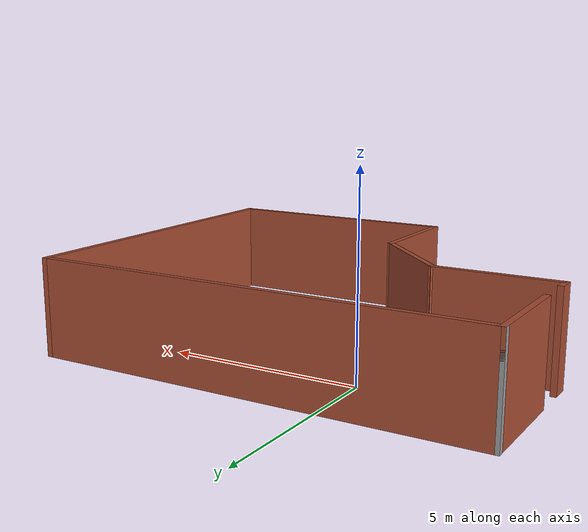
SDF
<?xml version='1.0'?>
<sdf version='1.7'>
  <model name='room-with-slant'>
    <pose>1.79263 -2.57025 0 0 -0 0</pose>
    <link name='Wall_0'>
      <collision name='Wall_0_Collision'>
        <geometry>
          <box>
            <size>0.5 0.15 2.5</size>
          </box>
        </geometry>
        <pose>0 0 1.25 0 -0 0</pose>
      </collision>
      <visual name='Wall_0_Visual'>
        <pose>0 0 1.25 0 -0 0</pose>
        <geometry>
          <box>
            <size>0.5 0.15 2.5</size>
          </box>
        </geometry>
        <material>
          <script>
            <uri>file://media/materials/scripts/gazebo.material</uri>
            <name>Gazebo/Bricks</name>
          </script>
          <ambient>1 1 1 1</ambient>
        </material>
        <meta>
          <layer>0</layer>
        </meta>
      </visual>
      <pose>-5.73263 0.615254 0 0 -0 -1.5708</pose>
    </link>
    <link name='Wall_1'>
      <collision name='Wall_1_Collision'>
        <geometry>
          <box>
            <size>3.25 0.15 2.5</size>
          </box>
        </geometry>
        <pose>0 0 1.25 0 -0 0</pose>
      </collision>
      <visual name='Wall_1_Visual'>
        <pose>0 0 1.25 0 -0 0</pose>
        <geometry>
          <box>
            <size>3.25 0.15 2.5</size>
          </box>
        </geometry>
        <material>
          <script>
            <uri>file://media/materials/scripts/gazebo.material</uri>
            <name>Gazebo/Bricks</name>
          </script>
          <ambient>1 1 1 1</ambient>
        </material>
        <meta>
          <layer>0</layer>
        </meta>
      </visual>
      <pose>-4.18263 0.440254 0 0 -0 0</pose>
    </link>
    <link name='Wall_2'>
      <collision name='Wall_2_Collision'>
        <geometry>
          <box>
            <size>3 0.15 2.5</size>
          </box>
        </geometry>
        <pose>0 0 1.25 0 -0 0</pose>
      </collision>
      <visual name='Wall_2_Visual'>
        <pose>0 0 1.25 0 -0 0</pose>
        <geometry>
          <box>
            <size>3 0.15 2.5</size>
          </box>
        </geometry>
        <material>
          <script>
            <uri>file://media/materials/scripts/gazebo.material</uri>
            <name>Gazebo/Bricks</name>
          </script>
          <ambient>1 1 1 1</ambient>
        </material>
        <meta>
          <layer>0</layer>
        </meta>
      </visual>
      <pose>-1.625 -0.567373 0 0 -0 -0.785398</pose>
    </link>
    <link name='Wall_3'>
      <collision name='Wall_3_Collision'>
        <geometry>
          <box>
            <size>3 0.15 2.5</size>
          </box>
        </geometry>
        <pose>0 0 1.25 0 -0 0</pose>
      </collision>
      <visual name='Wall_3_Visual'>
        <pose>0 0 1.25 0 -0 0</pose>
        <geometry>
          <box>
            <size>3 0.15 2.5</size>
          </box>
        </geometry>
        <material>
          <script>
            <uri>file://media/materials/scripts/gazebo.material</uri>
            <name>Gazebo/Bricks</name>
          </script>
          <ambient>1 1 1 1</ambient>
        </material>
        <meta>
          <layer>0</layer>
        </meta>
      </visual>
      <pose>-0.617373 -3 0 0 -0 -1.5708</pose>
    </link>
    <link name='Wall_4'>
      <collision name='Wall_4_Collision'>
        <geometry>
          <box>
            <size>6.5 0.15 2.5</size>
          </box>
        </geometry>
        <pose>0 0 1.25 0 -0 0</pose>
      </collision>
      <visual name='Wall_4_Visual'>
        <pose>0 0 1.25 0 -0 0</pose>
        <geometry>
          <box>
            <size>6.5 0.15 2.5</size>
          </box>
        </geometry>
        <material>
          <script>
            <uri>file://media/materials/scripts/gazebo.material</uri>
            <name>Gazebo/Bricks</name>
          </script>
          <ambient>1 1 1 1</ambient>
        </material>
        <meta>
          <layer>0</layer>
        </meta>
      </visual>
      <pose>2.55763 -4.425 0 0 -0 0</pose>
    </link>
    <link name='Wall_5'>
      <collision name='Wall_5_Collision'>
        <geometry>
          <box>
            <size>9 0.15 2.5</size>
          </box>
        </geometry>
        <pose>0 0 1.25 0 -0 0</pose>
      </collision>
      <visual name='Wall_5_Visual'>
        <pose>0 0 1.25 0 -0 0</pose>
        <geometry>
          <box>
            <size>9 0.15 2.5</size>
          </box>
        </geometry>
        <material>
          <script>
            <uri>file://media/materials/scripts/gazebo.material</uri>
            <name>Gazebo/Bricks</name>
          </script>
          <ambient>1 1 1 1</ambient>
        </material>
        <meta>
          <layer>0</layer>
        </meta>
      </visual>
      <pose>5.73263 0 0 0 -0 1.5708</pose>
    </link>
    <link name='Wall_6'>
      <collision name='Wall_6_Collision'>
        <geometry>
          <box>
            <size>11.5 0.15 2.5</size>
          </box>
        </geometry>
        <pose>0 0 1.25 0 -0 0</pose>
      </collision>
      <visual name='Wall_6_Visual'>
        <pose>0 0 1.25 0 -0 0</pose>
        <geometry>
          <box>
            <size>11.5 0.15 2.5</size>
          </box>
        </geometry>
        <material>
          <script>
            <uri>file://media/materials/scripts/gazebo.material</uri>
            <name>Gazebo/Bricks</name>
          </script>
          <ambient>1 1 1 1</ambient>
        </material>
        <meta>
          <layer>0</layer>
        </meta>
      </visual>
      <pose>0.057627 4.425 0 0 -0 3.14159</pose>
    </link>
    <link name='Wall_7'>
      <collision name='Wall_7_Collision'>
        <geometry>
          <box>
            <size>0.25 0.15 2.5</size>
          </box>
        </geometry>
        <pose>0 0 1.25 0 -0 0</pose>
      </collision>
      <visual name='Wall_7_Visual'>
        <pose>0 0 1.25 0 -0 0</pose>
        <geometry>
          <box>
            <size>0.25 0.15 2.5</size>
          </box>
        </geometry>
        <material>
          <script>
            <uri>file://media/materials/scripts/gazebo.material</uri>
            <name>Gazebo/Grey</name>
          </script>
          <ambient>1 1 1 1</ambient>
        </material>
        <meta>
          <layer>0</layer>
        </meta>
      </visual>
      <pose>-5.66737 4.425 0 0 -0 3.14159</pose>
    </link>
    <link name='Wall_8'>
      <collision name='Wall_8_Collision'>
        <geometry>
          <box>
            <size>2.75 0.15 2.5</size>
          </box>
        </geometry>
        <pose>0 0 1.25 0 -0 0</pose>
      </collision>
      <visual name='Wall_8_Visual'>
        <pose>0 0 1.25 0 -0 0</pose>
        <geometry>
          <box>
            <size>2.75 0.15 2.5</size>
          </box>
        </geometry>
        <material>
          <script>
            <uri>file://media/materials/scripts/gazebo.material</uri>
            <name>Gazebo/Bricks</name>
          </script>
          <ambient>1 1 1 1</ambient>
        </material>
        <meta>
          <layer>0</layer>
        </meta>
      </visual>
      <pose>-5.71737 3.125 0 0 -0 -1.5708</pose>
    </link>
    <static>1</static>
  </model>
</sdf>
